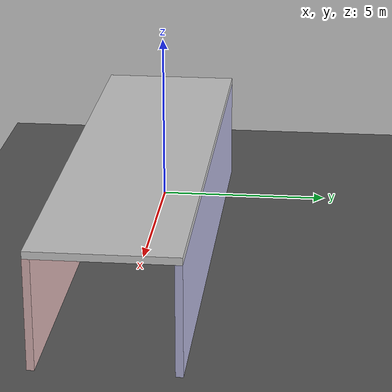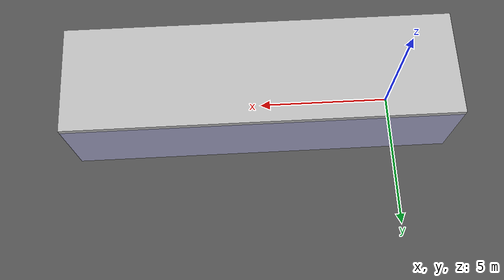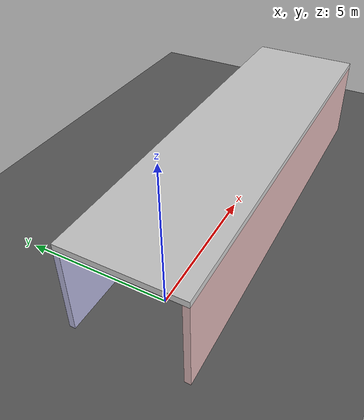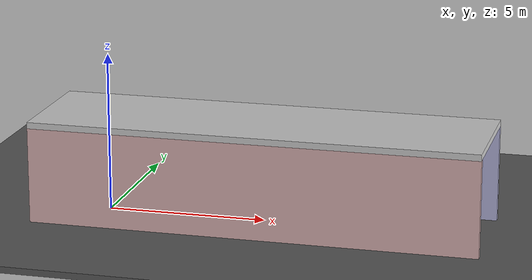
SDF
<sdf version="1.9">
 <world name="corridor_test">
  <physics name="physics" type="ignored">
   <max_step_size>.001</max_step_size>
   <real_time_factor>1</real_time_factor>
  </physics>
  <plugin filename="gz-sim-physics-system" name="gz::sim::systems::Physics"/>
  <plugin filename="gz-sim-user-commands-system" name="gz::sim::systems::UserCommands"/>
  <plugin filename="gz-sim-scene-broadcaster-system" name="gz::sim::systems::SceneBroadcaster"/>
  <plugin filename="gz-sim-imu-system" name="gz::sim::systems::Imu"/>
  <plugin filename="gz-sim-sensors-system" name="gz::sim::systems::Sensors">
   <render_engine>ogre2</render_engine>
  </plugin>
  <light name="sun" type="directional">
   <pose>0 0 10 0 0 0</pose>
   <diffuse>.9 .9 .9 1</diffuse>
   <direction>-.5 .1 -1</direction>
  </light>
  <model name="ground">
   <static>true</static>
   <pose>5 0 -.1 0 0 0</pose>
   <link name="link">
    <collision name="collision"><geometry><box><size>40 20 .2</size></box></geometry></collision>
    <visual name="visual">
     <geometry><box><size>40 20 .2</size></box></geometry>
     <material><ambient>.35 .35 .35 1</ambient><diffuse>.35 .35 .35 1</diffuse></material>
    </visual>
   </link>
  </model>
  <model name="left_wall">
   <static>true</static>
   <pose>5 1.85 1.5 0 0 0</pose>
   <link name="link">
    <collision name="collision"><geometry><box><size>14 .2 3</size></box></geometry></collision>
    <visual name="visual">
     <geometry><box><size>14 .2 3</size></box></geometry>
     <material><ambient>.7 .7 .85 1</ambient><diffuse>.7 .7 .85 1</diffuse></material>
    </visual>
   </link>
  </model>
  <model name="right_wall">
   <static>true</static>
   <pose>5 -1.85 1.5 0 0 0</pose>
   <link name="link">
    <collision name="collision"><geometry><box><size>14 .2 3</size></box></geometry></collision>
    <visual name="visual">
     <geometry><box><size>14 .2 3</size></box></geometry>
     <material><ambient>.85 .7 .7 1</ambient><diffuse>.85 .7 .7 1</diffuse></material>
    </visual>
   </link>
  </model>
  <model name="roof">
   <static>true</static>
   <pose>5 0 3.1 0 0 0</pose>
   <link name="link">
    <collision name="collision"><geometry><box><size>14 3.9 .2</size></box></geometry></collision>
    <visual name="visual">
     <geometry><box><size>14 3.9 .2</size></box></geometry>
     <material><ambient>.8 .8 .8 1</ambient><diffuse>.8 .8 .8 1</diffuse></material>
    </visual>
   </link>
  </model>
 </world>
</sdf>
